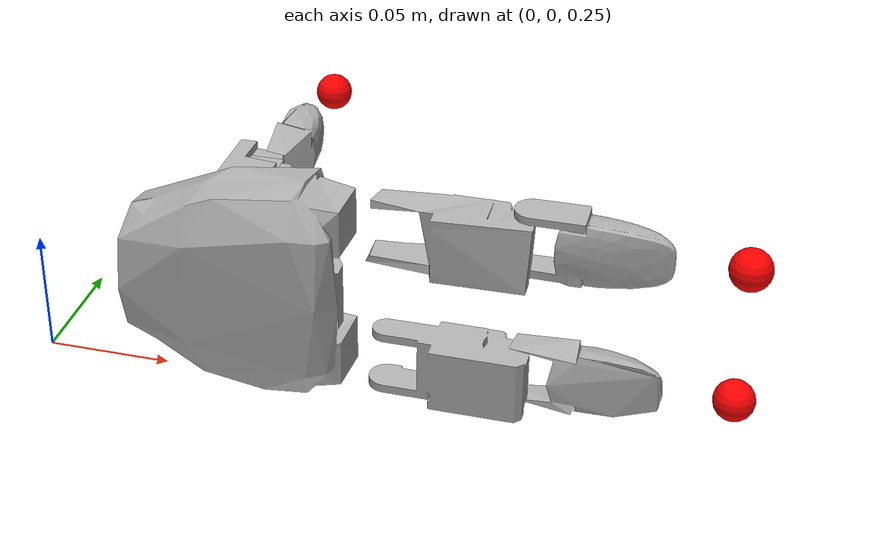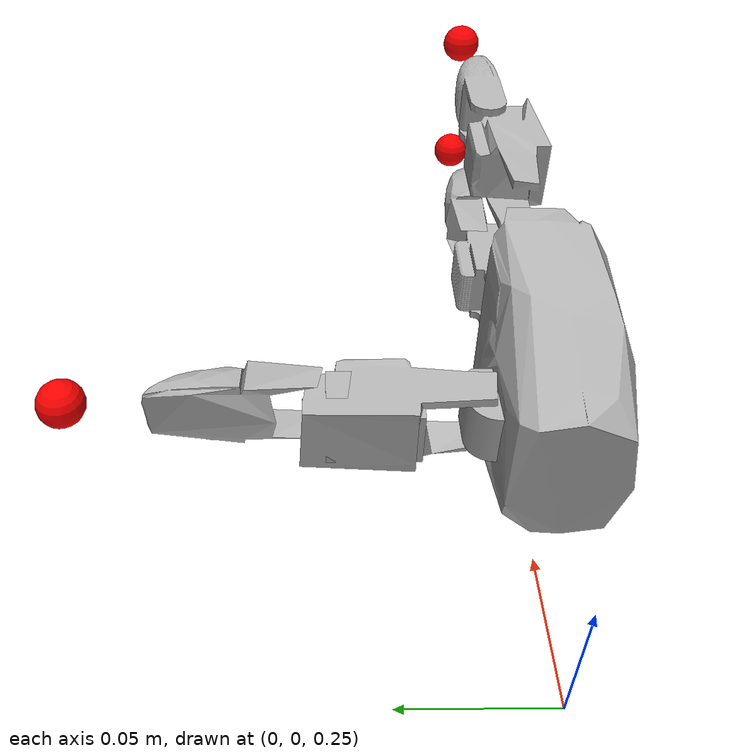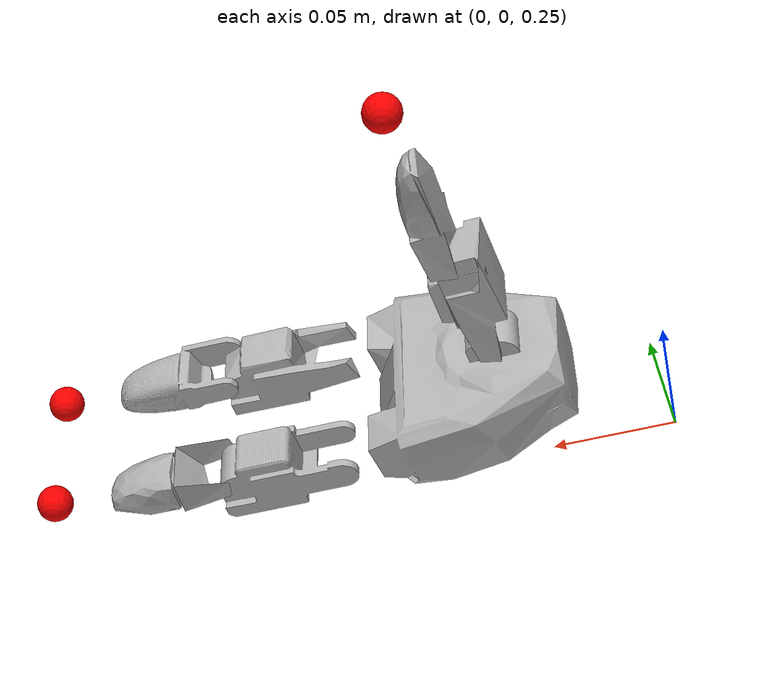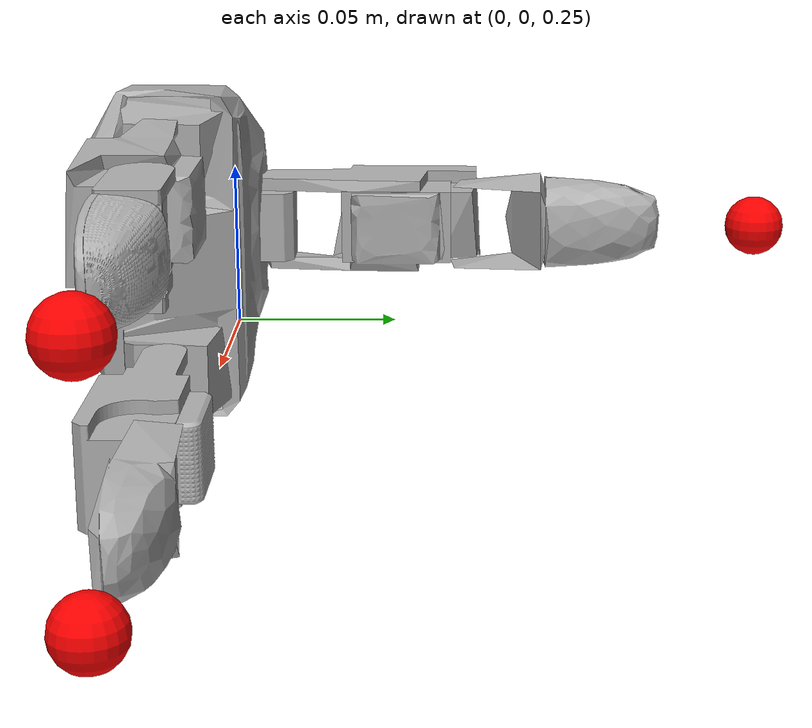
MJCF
<mujoco model="right_dex3_hand">
  <compiler angle="radian" meshdir="./meshes/"/>

  <asset>
    <mesh name="right_hand_palm_link" file="right_hand_palm_link.STL"/>
    <mesh name="right_hand_thumb_0_link" file="right_hand_thumb_0_link.STL"/>
    <mesh name="right_hand_thumb_1_link" file="right_hand_thumb_1_link.STL"/>
    <mesh name="right_hand_thumb_2_link" file="right_hand_thumb_2_link.STL"/>
    <mesh name="right_hand_middle_0_link" file="right_hand_middle_0_link.STL"/>
    <mesh name="right_hand_middle_1_link" file="right_hand_middle_1_link.STL"/>
    <mesh name="right_hand_index_0_link" file="right_hand_index_0_link.STL"/>
    <mesh name="right_hand_index_1_link" file="right_hand_index_1_link.STL"/>
  </asset>

  <default>
    <default class="hand_motor">
      <joint damping="0.01" armature="0.01" frictionloss="0.1"/>
    </default>
  </default>

  <worldbody>
    <body name="hand_base" pos="0 0 0.3">
      <geom pos="0.0415 -0.003 0" quat="1 0 0 0" type="mesh" contype="0"
        conaffinity="0" group="1" density="0" rgba="0.7 0.7 0.7 1"
        mesh="right_hand_palm_link" />
      <geom pos="0.0415 -0.003 0" quat="1 0 0 0" type="mesh"
        rgba="0.7 0.7 0.7 1" mesh="right_hand_palm_link" />
      <body name="right_hand_thumb_0_link" pos="0.0695 -0.003 0">
        <inertial pos="-0.000354413 0.0132989 -0.000412362"
          quat="0.424842 0.567321 -0.591021 0.385163" mass="0.0803302"
          diaginertia="1.39245e-05 1.32309e-05 1.19138e-05" />
        <joint name="right_hand_thumb_0_joint" pos="0 0 0" axis="0 1 0"
          range="-1.0472 1.0472" actuatorfrcrange="-2.45 2.45" class="hand_motor" />
        <geom type="mesh" contype="0" conaffinity="0" group="1" density="0"
          rgba="0.7 0.7 0.7 1" mesh="right_hand_thumb_0_link" />
        <geom type="mesh" rgba="0.7 0.7 0.7 1" mesh="right_hand_thumb_0_link" />
        <body name="right_hand_thumb_1_link" pos="0 0.0246 0">
          <inertial pos="0.0036206 0.040444 0.000297711"
            quat="0.696371 0.699653 -0.125539 0.0989605" mass="0.0561963"
            diaginertia="1.23865e-05 1.2092e-05 5.00561e-06" />
          <joint name="right_hand_thumb_1_joint" pos="0 0 0" axis="0 0 1"
            range="-1.0472 0.724312" actuatorfrcrange="-0.7 0.7" class="hand_motor" />
          <geom type="mesh" contype="0" conaffinity="0" group="1" density="0"
            rgba="0.7 0.7 0.7 1" mesh="right_hand_thumb_1_link" />
          <geom size="0.01 0.015 0.01" pos="-0.001 0.032 0" type="box"
            rgba="0.7 0.7 0.7 1" />
          <body name="right_hand_thumb_2_link" pos="0.0055 0.0528 0">
            <inertial pos="-0.00081406 0.0345621 -0.000129799"
              quat="0.701976 0.711984 -0.0160342 -0.00721768" mass="0.0248731"
              diaginertia="8.60616e-06 7.69097e-06 1.98043e-06" />
            <joint name="right_hand_thumb_2_joint" pos="0 0 0" axis="0 0 1"
              range="-2.0944 0" actuatorfrcrange="-0.7 0.7" class="hand_motor" />
            <geom type="mesh" contype="0" conaffinity="0" group="1" density="0"
              rgba="0.7 0.7 0.7 1" mesh="right_hand_thumb_2_link" />
            <geom type="mesh" rgba="0.7 0.7 0.7 1"
              mesh="right_hand_thumb_2_link" />
              <body name="rt_body_site" pos="0 0.078 0">
                <site name="rt_index" size="0.008" rgba="1 0 0 1" group="1"/>
              </body>
          </body>
        </body>
      </body>
      <body name="right_hand_index_0_link" pos="0.1415 -0.0013 0.0285">
        <inertial pos="0.040444 0.0036206 -0.000287711"
          quat="0.562384 0.40596 0.583499 0.422433" mass="0.0561963"
          diaginertia="1.23865e-05 1.2092e-05 5.00561e-06" />
        <joint name="right_hand_index_0_joint" pos="0 0 0" axis="0 0 1"
          range="-0.191986 1.8326" actuatorfrcrange="-0.7 0.7" class="hand_motor" />
        <geom type="mesh" contype="0" conaffinity="0" group="1" density="0"
          rgba="0.7 0.7 0.7 1" mesh="right_hand_index_0_link" />
        <geom type="mesh" rgba="0.7 0.7 0.7 1" mesh="right_hand_index_0_link" />
        <body name="right_hand_index_1_link" pos="0.0528 0.0055 0">
          <inertial pos="0.0345621 -0.00081406 0.000129799"
            quat="0.491268 0.492111 0.514787 0.501475" mass="0.0248731"
            diaginertia="8.60616e-06 7.69097e-06 1.98043e-06" />
          <joint name="right_hand_index_1_joint" pos="0 0 0" axis="0 0 1"
            range="0 2.0944" actuatorfrcrange="-0.7 0.7" class="hand_motor" />
          <geom type="mesh" contype="0" conaffinity="0" group="1" density="0"
            rgba="0.7 0.7 0.7 1" mesh="right_hand_index_1_link" />
          <geom type="mesh" rgba="0.7 0.7 0.7 1" mesh="right_hand_index_1_link" />
          <body name="ri_body_site" pos="0.078 0 0">
            <site name="ri_index" size="0.008" rgba="1 0 0 1" group="1"/>
          </body>
        </body>
      </body>
      <body name="right_hand_middle_0_link" pos="0.1415 -0.0013 -0.0285">
        <inertial pos="0.040444 0.0036206 -0.000287711"
          quat="0.562384 0.40596 0.583499 0.422433" mass="0.0561963"
          diaginertia="1.23865e-05 1.2092e-05 5.00561e-06" />
        <joint name="right_hand_middle_0_joint" pos="0 0 0" axis="0 0 1"
          range="-0.191986 1.8326" actuatorfrcrange="-0.7 0.7" class="hand_motor" />
        <geom type="mesh" contype="0" conaffinity="0" group="1" density="0"
          rgba="0.7 0.7 0.7 1" mesh="right_hand_middle_0_link" />
        <geom type="mesh" rgba="0.7 0.7 0.7 1" mesh="right_hand_middle_0_link" />
        <body name="right_hand_middle_1_link" pos="0.0528 0.0055 0">
          <inertial pos="0.0345621 -0.00081406 0.000129799"
            quat="0.491268 0.492111 0.514787 0.501475" mass="0.0248731"
            diaginertia="8.60616e-06 7.69097e-06 1.98043e-06" />
          <joint name="right_hand_middle_1_joint" pos="0 0 0" axis="0 0 1"
            range="0 2.0944" actuatorfrcrange="-0.7 0.7" class="hand_motor" />
          <geom type="mesh" contype="0" conaffinity="0" group="1" density="0"
            rgba="0.7 0.7 0.7 1" mesh="right_hand_middle_1_link" />
          <geom type="mesh" rgba="0.7 0.7 0.7 1" mesh="right_hand_middle_1_link" />
          <body name="rm_body_site" pos="0.078 0 0">
            <site name="rm_index" size="0.008" rgba="1 0 0 1" group="1"/>
          </body>
        </body>
      </body>
    </body>
  </worldbody>

<actuator>
    <motor name="right_hand_thumb_0_motor" joint="right_hand_thumb_0_joint" ctrlrange="-5 5"/>
    <motor name="right_hand_thumb_1_motor" joint="right_hand_thumb_1_joint" ctrlrange="-5 5"/>
    <motor name="right_hand_thumb_2_motor" joint="right_hand_thumb_2_joint" ctrlrange="-5 5"/>
    <motor name="right_hand_middle_0_motor" joint="right_hand_middle_0_joint" ctrlrange="-5 5"/>
    <motor name="right_hand_middle_1_motor" joint="right_hand_middle_1_joint" ctrlrange="-5 5"/>
    <motor name="right_hand_index_0_motor" joint="right_hand_index_0_joint" ctrlrange="-5 5"/>
    <motor name="right_hand_index_1_motor" joint="right_hand_index_1_joint" ctrlrange="-5 5"/>
  </actuator>

</mujoco>
